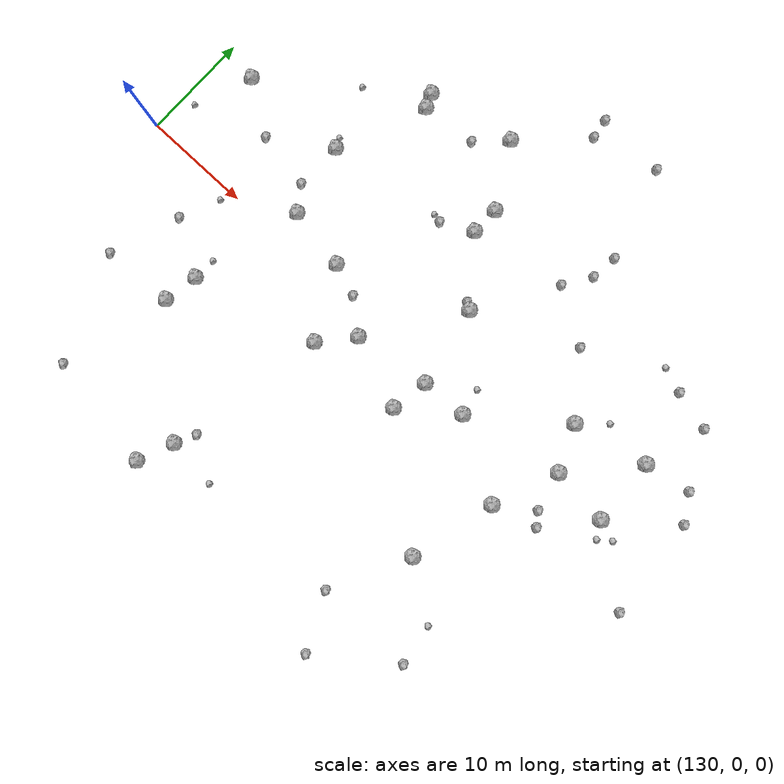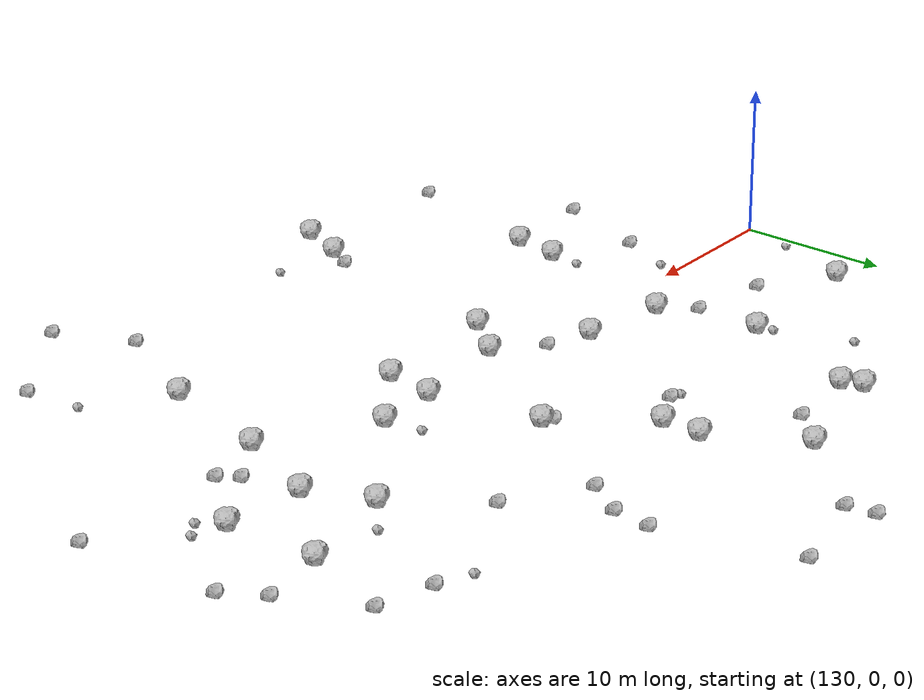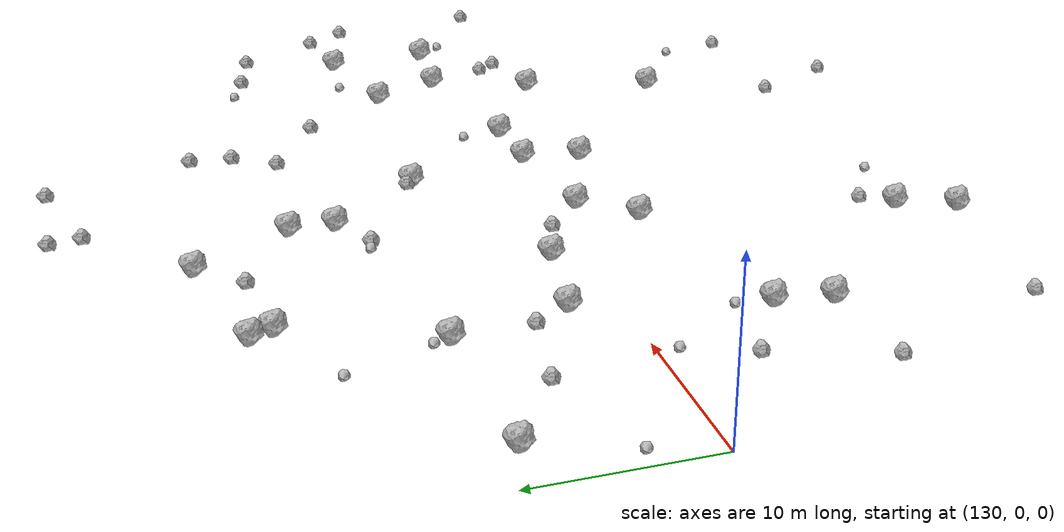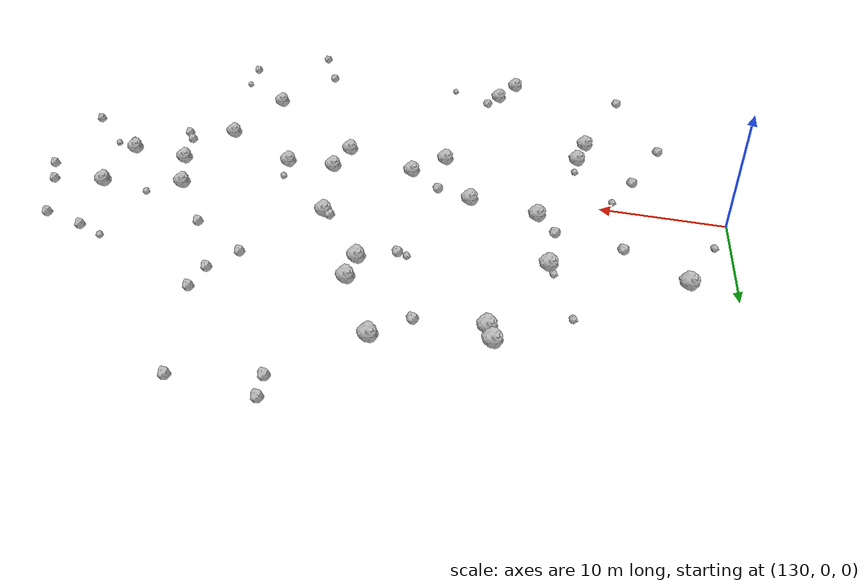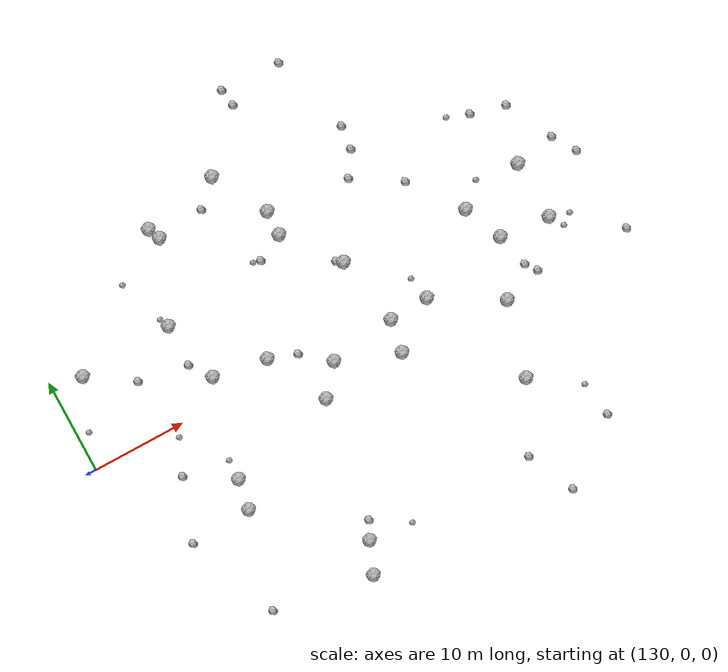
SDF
<sdf version="1.6">
 <world name="default">
  <include><uri>model://sun</uri></include>
  <model name="rock1_4_2">
   <include><uri>model://rock1</uri><pose>182.2459384710096 6.936665937663079 0.5 0 0 0</pose></include>
  </model>
  <model name="rock1_4_3">
   <include><uri>model://rock1</uri><pose>157.64669995637593 12.100449961134245 0.5 0 0 0</pose></include>
  </model>
  <model name="rock1_4_4">
   <include><uri>model://rock1</uri><pose>162.89917458101948 -4.250903229017677 0.5 0 0 0</pose></include>
  </model>
  <model name="rock1_4_5">
   <include><uri>model://rock1</uri><pose>150.6444578688587 1.6527739368177912 0.5 0 0 0</pose></include>
  </model>
  <model name="rock1_4_6">
   <include><uri>model://rock1</uri><pose>144.91838922202538 2.66443308496185 0.5 0 0 0</pose></include>
  </model>
  <model name="rock1_4_7">
   <include><uri>model://rock1</uri><pose>167.71475413443224 -0.5998222587093665 0.5 0 0 0</pose></include>
  </model>
  <model name="rock1_4_8">
   <include><uri>model://rock1</uri><pose>150.98572521209664 -19.348907617592936 0.5 0 0 0</pose></include>
  </model>
  <model name="rock1_4_9">
   <include><uri>model://rock1</uri><pose>146.32460582312407 18.843050217641533 0.5 0 0 0</pose></include>
  </model>
  <model name="rock1_4_10">
   <include><uri>model://rock1</uri><pose>146.8661968163585 17.538926476817792 0.5 0 0 0</pose></include>
  </model>
  <model name="rock1_4_11">
   <include><uri>model://rock1</uri><pose>133.40206476208675 8.93641356513669 0.5 0 0 0</pose></include>
  </model>
  <model name="rock1_4_12">
   <include><uri>model://rock1</uri><pose>174.75073849252834 -4.644954964128669 0.5 0 0 0</pose></include>
  </model>
  <model name="rock1_4_13">
   <include><uri>model://rock1</uri><pose>156.43355233016652 -1.758961622819566 0.5 0 0 0</pose></include>
  </model>
  <model name="rock1_4_14">
   <include><uri>model://rock1</uri><pose>162.0432782292701 6.5694300274105615 0.5 0 0 0</pose></include>
  </model>
  <model name="rock1_4_15">
   <include><uri>model://rock1</uri><pose>172.68526430150334 -12.463085012794512 0.5 0 0 0</pose></include>
  </model>
  <model name="rock1_4_16">
   <include><uri>model://rock1</uri><pose>154.4551801974667 20.464539747356234 0.5 0 0 0</pose></include>
  </model>
  <model name="rock1_4_17">
   <include><uri>model://rock1</uri><pose>157.72174229713667 14.732230169371363 0.5 0 0 0</pose></include>
  </model>
  <model name="rock1_4_18">
   <include><uri>model://rock1</uri><pose>163.4939300003785 -0.7974495895788856 0.5 0 0 0</pose></include>
  </model>
  <model name="rock1_4_19">
   <include><uri>model://rock1</uri><pose>142.29869046604279 -7.641652273425482 0.5 0 0 0</pose></include>
  </model>
  <model name="rock1_4_20">
   <include><uri>model://rock1</uri><pose>175.4137811555077 5.393996520934515 0.5 0 0 0</pose></include>
  </model>
  <model name="rock1_4_21">
   <include><uri>model://rock1</uri><pose>141.74369223147178 -10.822418880896763 0.5 0 0 0</pose></include>
  </model>
  <model name="rock1_4_22">
   <include><uri>model://rock1</uri><pose>143.43502869906 9.303724516677775 0.5 0 0 0</pose></include>
  </model>
  <model name="rock1_4_23">
   <include><uri>model://rock1</uri><pose>182.46552153887822 0.743195182910565 0.5 0 0 0</pose></include>
  </model>
  <model name="rock1_4_24">
   <include><uri>model://rock1</uri><pose>177.1679100928933 1.2824945257978762 0.5 0 0 0</pose></include>
  </model>
  <model name="rock1_4_25">
   <include><uri>model://rock1</uri><pose>153.92507666658202 -4.712982104270168 0.5 0 0 0</pose></include>
  </model>
  <model name="rock1_4_26">
   <include><uri>model://rock1</uri><pose>149.65464966122104 -22.60178167160073 0.5 0 0 0</pose></include>
  </model>
  <model name="rock2_4_0">
   <include><uri>model://rock2</uri><pose>178.13697705484668 -19.621364842763665 0.3 0 0 0</pose></include>
  </model>
  <model name="rock2_4_1">
   <include><uri>model://rock2</uri><pose>178.00697165861325 -2.3069914407682752 0.3 0 0 0</pose></include>
  </model>
  <model name="rock2_4_2">
   <include><uri>model://rock2</uri><pose>161.37097255591894 7.0021521340236745 0.3 0 0 0</pose></include>
  </model>
  <model name="rock2_4_3">
   <include><uri>model://rock2</uri><pose>151.86485629729407 -17.528164427171827 0.3 0 0 0</pose></include>
  </model>
  <model name="rock2_4_4">
   <include><uri>model://rock2</uri><pose>151.91233315072765 18.06514389597806 0.3 0 0 0</pose></include>
  </model>
  <model name="rock2_4_5">
   <include><uri>model://rock2</uri><pose>165.8476675139446 27.380619200379982 0.3 0 0 0</pose></include>
  </model>
  <model name="rock2_4_6">
   <include><uri>model://rock2</uri><pose>188.78536381685217 -4.012795616446176 0.3 0 0 0</pose></include>
  </model>
  <model name="rock2_4_7">
   <include><uri>model://rock2</uri><pose>159.74816238466477 25.829084714491636 0.3 0 0 0</pose></include>
  </model>
  <model name="rock2_4_8">
   <include><uri>model://rock2</uri><pose>183.9920382452007 12.693128258838001 0.3 0 0 0</pose></include>
  </model>
  <model name="rock2_4_9">
   <include><uri>model://rock2</uri><pose>188.05737432660433 5.279124803357853 0.3 0 0 0</pose></include>
  </model>
  <model name="rock2_4_10">
   <include><uri>model://rock2</uri><pose>171.46606027403618 -24.59432100765937 0.3 0 0 0</pose></include>
  </model>
  <model name="rock2_4_11">
   <include><uri>model://rock2</uri><pose>168.37085837119355 18.743120294435784 0.3 0 0 0</pose></include>
  </model>
  <model name="rock2_4_12">
   <include><uri>model://rock2</uri><pose>159.46325220762094 27.685175621429565 0.3 0 0 0</pose></include>
  </model>
  <model name="rock2_4_13">
   <include><uri>model://rock2</uri><pose>154.74517775531626 10.68577707215897 0.3 0 0 0</pose></include>
  </model>
  <model name="rock2_4_14">
   <include><uri>model://rock2</uri><pose>138.03142387964436 5.847321803738112 0.3 0 0 0</pose></include>
  </model>
  <model name="rock2_4_15">
   <include><uri>model://rock2</uri><pose>168.09875020593074 16.250440560503066 0.3 0 0 0</pose></include>
  </model>
  <model name="rock2_4_16">
   <include><uri>model://rock2</uri><pose>178.85963542737645 -3.483496290761277 0.3 0 0 0</pose></include>
  </model>
  <model name="rock2_4_17">
   <include><uri>model://rock2</uri><pose>135.12908593651096 -11.182291316528548 0.3 0 0 0</pose></include>
  </model>
  <model name="rock2_4_18">
   <include><uri>model://rock2</uri><pose>171.3715084518119 10.734154792490813 0.3 0 0 0</pose></include>
  </model>
  <model name="rock2_4_19">
   <include><uri>model://rock2</uri><pose>137.41611937054938 -4.723181293423654 0.3 0 0 0</pose></include>
  </model>
  <model name="rock2_4_20">
   <include><uri>model://rock2</uri><pose>138.99189124292576 -20.983166318266633 0.3 0 0 0</pose></include>
  </model>
  <model name="rock2_4_21">
   <include><uri>model://rock2</uri><pose>180.3531488364147 13.648689364292395 0.3 0 0 0</pose></include>
  </model>
  <model name="rock2_4_22">
   <include><uri>model://rock2</uri><pose>169.11877153967953 -19.58721424848025 0.3 0 0 0</pose></include>
  </model>
  <model name="rock2_4_23">
   <include><uri>model://rock2</uri><pose>143.29640890520636 4.887672032709958 0.3 0 0 0</pose></include>
  </model>
  <model name="rock2_4_24">
   <include><uri>model://rock2</uri><pose>186.53643610108205 7.717864880872511 0.3 0 0 0</pose></include>
  </model>
  <model name="rock2_4_25">
   <include><uri>model://rock2</uri><pose>153.56638544143655 0.6073371045023848 0.3 0 0 0</pose></include>
  </model>
  <model name="rock2_4_26">
   <include><uri>model://rock2</uri><pose>166.46914631954235 13.772071714274112 0.3 0 0 0</pose></include>
  </model>
  <model name="rock3_4_0">
   <include><uri>model://rock3</uri><pose>153.94264706349438 10.856026774485493 0.2 0 0 0</pose></include>
  </model>
  <model name="rock3_4_1">
   <include><uri>model://rock3</uri><pose>155.58795929884172 -19.899062189318663 0.2 0 0 0</pose></include>
  </model>
  <model name="rock3_4_2">
   <include><uri>model://rock3</uri><pose>141.24492929068649 15.119510825235508 0.2 0 0 0</pose></include>
  </model>
  <model name="rock3_4_3">
   <include><uri>model://rock3</uri><pose>177.55849186453688 -15.92627119839915 0.2 0 0 0</pose></include>
  </model>
  <model name="rock3_4_4">
   <include><uri>model://rock3</uri><pose>131.20423928687165 3.6495448639970363 0.2 0 0 0</pose></include>
  </model>
  <model name="rock3_4_5">
   <include><uri>model://rock3</uri><pose>142.93847645295256 10.24134583533705 0.2 0 0 0</pose></include>
  </model>
  <model name="rock3_4_6">
   <include><uri>model://rock3</uri><pose>142.31732631286928 -5.573032922509313 0.2 0 0 0</pose></include>
  </model>
  <model name="rock3_4_7">
   <include><uri>model://rock3</uri><pose>177.70426999098132 7.4701324745986 0.2 0 0 0</pose></include>
  </model>
  <model name="rock3_4_8">
   <include><uri>model://rock3</uri><pose>138.97558130141348 -1.1277909429149133 0.2 0 0 0</pose></include>
  </model>
  <model name="rock3_4_9">
   <include><uri>model://rock3</uri><pose>167.20244824111322 1.8327565392689493 0.2 0 0 0</pose></include>
  </model>
  <model name="rock3_4_10">
   <include><uri>model://rock3</uri><pose>178.06988600925794 14.44883473183198 0.2 0 0 0</pose></include>
  </model>
  <model name="rock3_4_11">
   <include><uri>model://rock3</uri><pose>184.46445522743844 0.06915089905401217 0.2 0 0 0</pose></include>
  </model>
  <model name="rock3_4_12">
   <include><uri>model://rock3</uri><pose>183.35062002019163 -0.7715943125931659 0.2 0 0 0</pose></include>
  </model>
 </world>
</sdf>
